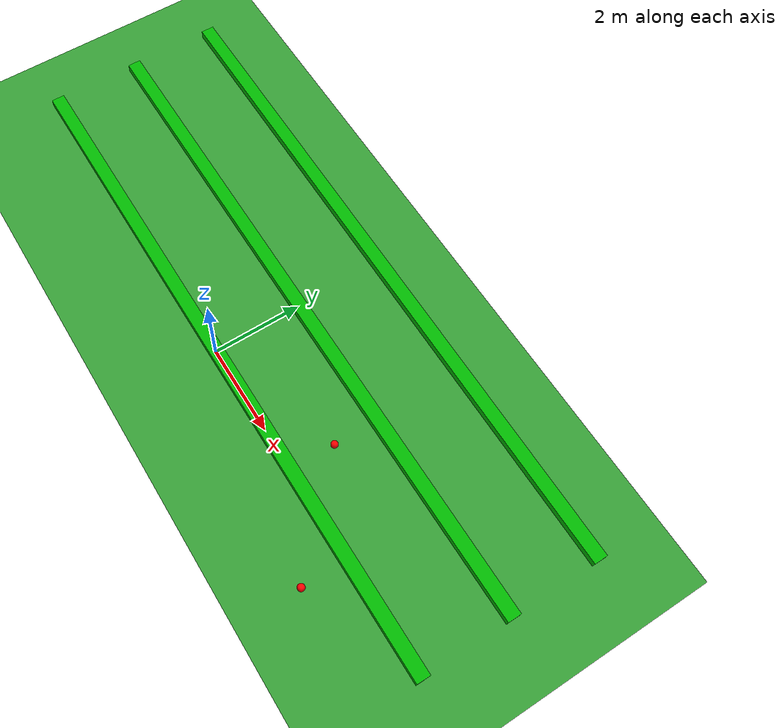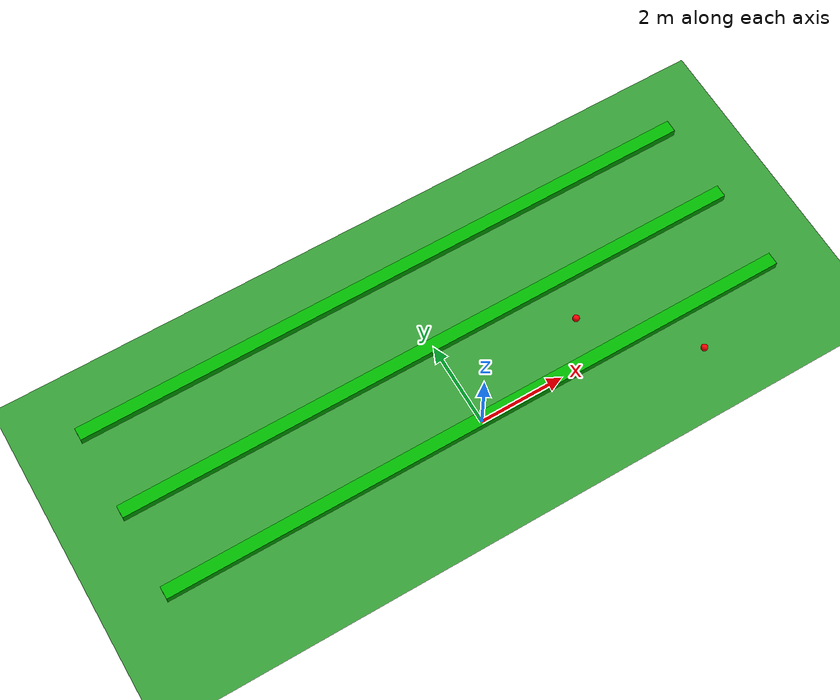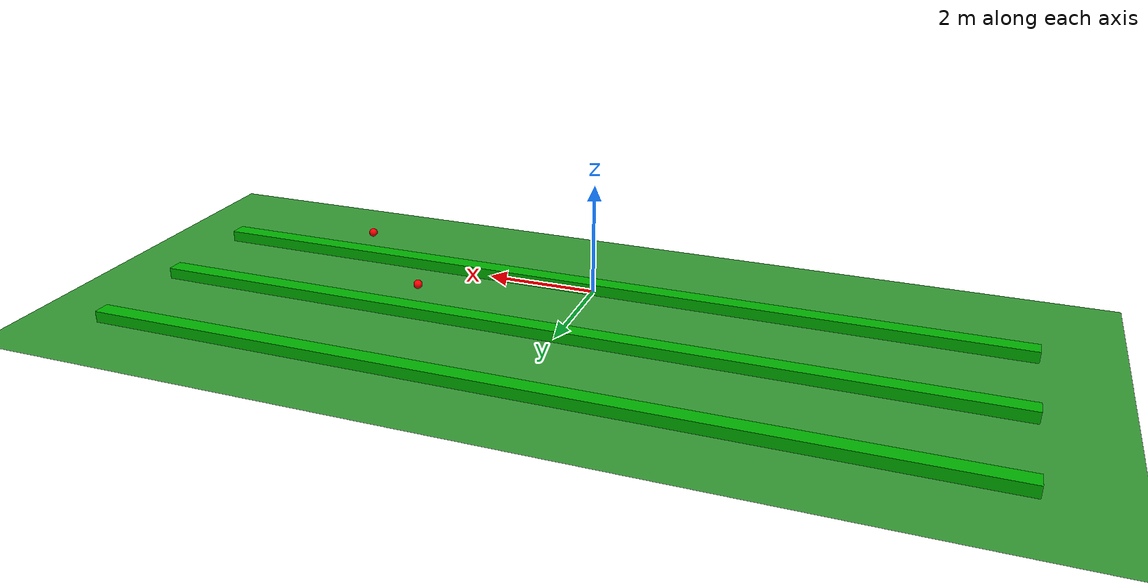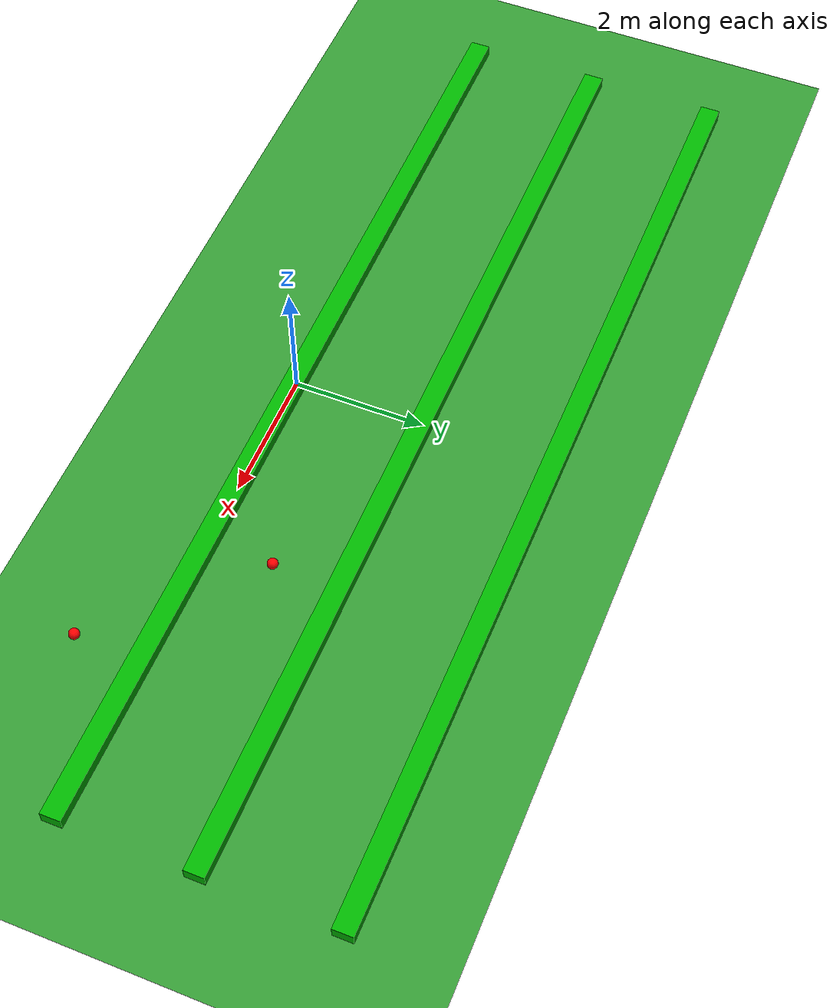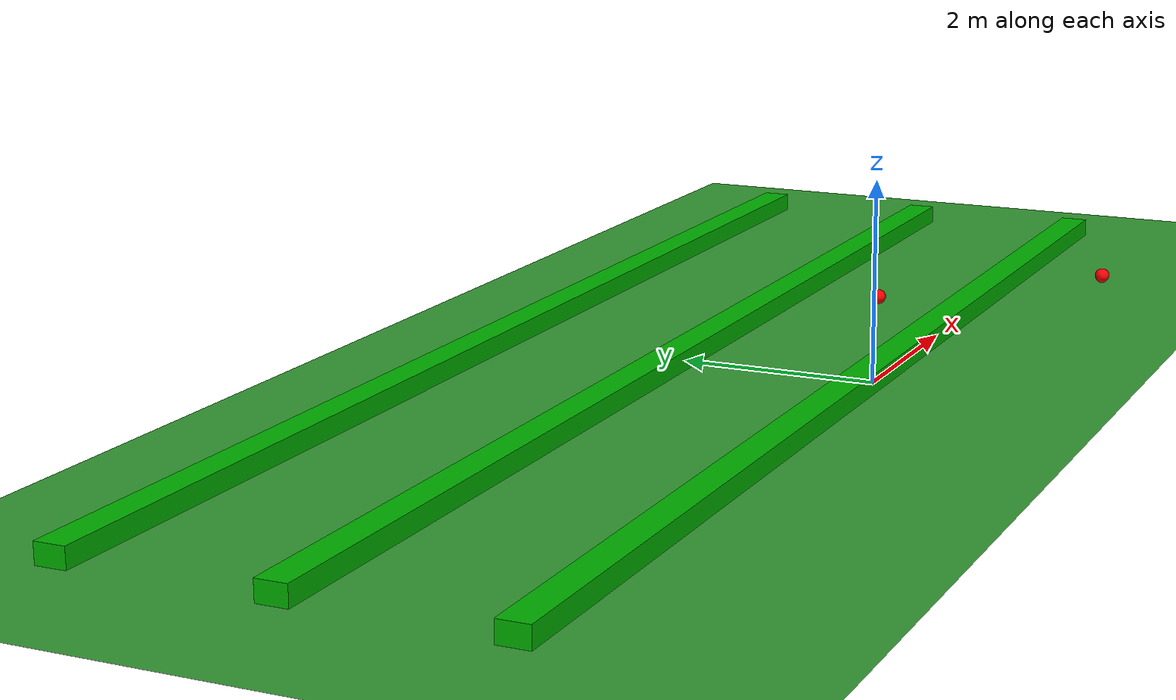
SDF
<?xml version="1.0"?>
<sdf version="1.9">
  <world name="crop_field">

    <!-- Lighting -->
    <light type="directional" name="sun">
      <pose>0 0 10 0 0 0</pose>
      <diffuse>0.9 0.9 0.9 1</diffuse>
      <specular>0.2 0.2 0.2 1</specular>
      <direction>-0.5 -0.5 -1</direction>
      <cast_shadows>true</cast_shadows>
    </light>

    <!-- Ambient light -->
    <ambient_light>0.4 0.4 0.4</ambient_light>

    <!-- Ground Plane -->
    <model name="ground_plane">
      <static>true</static>
      <link name="link">
        <collision name="collision">
          <geometry>
            <plane>
              <normal>0 0 1</normal>
              <size>20 20</size>
            </plane>
          </geometry>
        </collision>
        <visual name="visual">
          <geometry>
            <plane>
              <normal>0 0 1</normal>
              <size>20 20</size>
            </plane>
          </geometry>
          <!-- Simple color instead of material script -->
          <material>
            <ambient>0.2 0.5 0.2 1</ambient>
            <diffuse>0.2 0.6 0.2 1</diffuse>
          </material>
        </visual>
      </link>
    </model>

    <!-- Crop Rows -->
    <model name="crop_row_1">
      <static>true</static>
      <pose>0 4 0.1 0 0 0</pose>
      <link name="link">
        <visual name="visual">
          <geometry>
            <box>
              <size>15 0.3 0.2</size>
            </box>
          </geometry>
          <material>
            <ambient>0 0.6 0 1</ambient>
            <diffuse>0 0.7 0 1</diffuse>
          </material>
        </visual>
      </link>
    </model>

    <model name="crop_row_2">
      <static>true</static>
      <pose>0 2 0.1 0 0 0</pose>
      <link name="link">
        <visual name="visual">
          <geometry>
            <box>
              <size>15 0.3 0.2</size>
            </box>
          </geometry>
          <material>
            <ambient>0 0.6 0 1</ambient>
            <diffuse>0 0.7 0 1</diffuse>
          </material>
        </visual>
      </link>
    </model>

    <model name="crop_row_3">
      <static>true</static>
      <pose>0 0 0.1 0 0 0</pose>
      <link name="link">
        <visual name="visual">
          <geometry>
            <box>
              <size>15 0.3 0.2</size>
            </box>
          </geometry>
          <material>
            <ambient>0 0.6 0 1</ambient>
            <diffuse>0 0.7 0 1</diffuse>
          </material>
        </visual>
      </link>
    </model>

    <!-- Weeds -->
    <model name="weed_1">
      <pose>3 1 0.1 0 0 0</pose>
      <link name="link">
        <visual name="visual">
          <geometry>
            <sphere>
              <radius>0.08</radius>
            </sphere>
          </geometry>
          <material>
            <ambient>1 0 0 1</ambient>
            <diffuse>1 0 0 1</diffuse>
          </material>
        </visual>
      </link>
    </model>

    <model name="weed_2">
      <pose>5 -1 0.1 0 0 0</pose>
      <link name="link">
        <visual name="visual">
          <geometry>
            <sphere>
              <radius>0.08</radius>
            </sphere>
          </geometry>
          <material>
            <ambient>1 0 0 1</ambient>
            <diffuse>1 0 0 1</diffuse>
          </material>
        </visual>
      </link>
    </model>

    <model name="weed_3">
      <pose>7 2 0.1 0 0 0</pose>
      <link name="link">
        <visual name="visual">
          <geometry>
            <sphere>
              <radius>0.08</radius>
            </sphere>
          </geometry>
          <material>
            <ambient>1 0 0 1</ambient>
            <diffuse>1 0 0 1</diffuse>
          </material>
        </visual>
      </link>
    </model>

    <!-- Default camera position -->
    <gui>
      <camera name="user_camera">
        <pose>0 -15 5 0.7 0 0</pose>
      </camera>
    </gui>

  </world>
</sdf>
